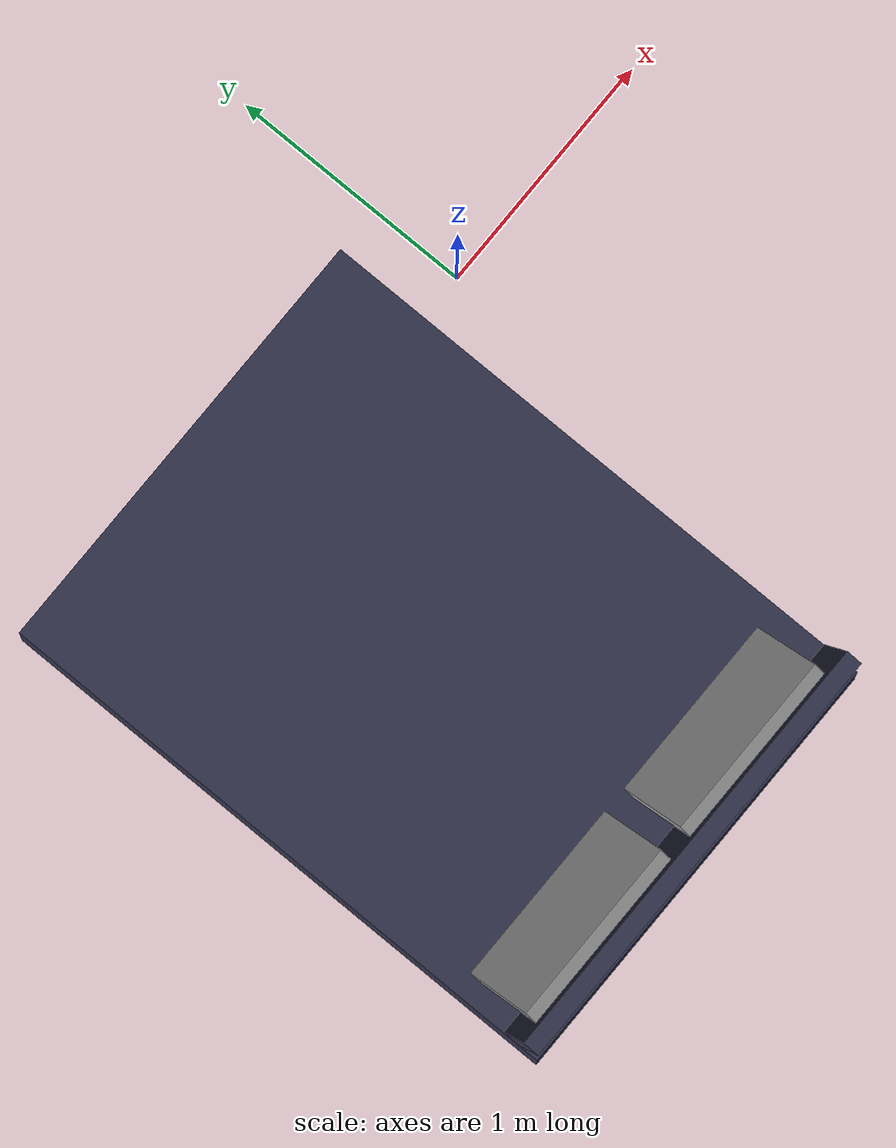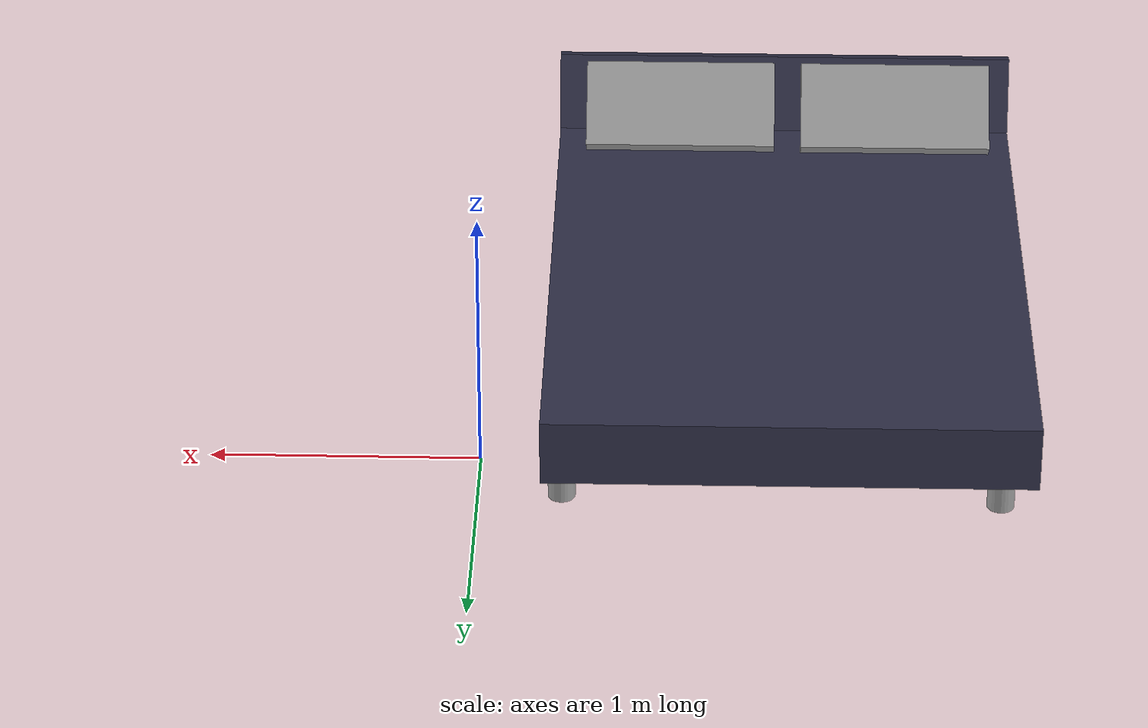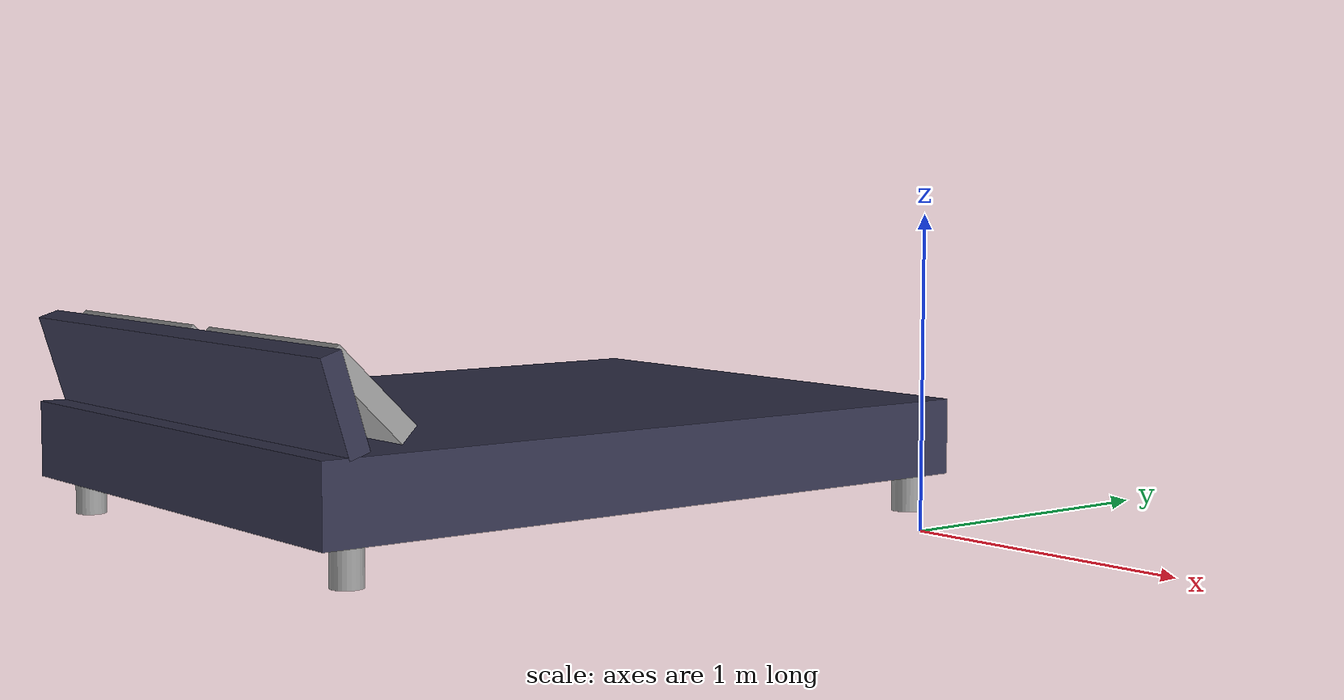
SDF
<?xml version='1.0'?>
<sdf version='1.7'>
  <model name='my_bed'>
    <link name='link'>
      <inertial>
        <mass>1</mass>
        <inertia>
          <ixx>0.166667</ixx>
          <ixy>0</ixy>
          <ixz>0</ixz>
          <iyy>0.166667</iyy>
          <iyz>0</iyz>
          <izz>0.166667</izz>
        </inertia>
        <pose>0 0 0 0 -0 0</pose>
      </inertial>
      <self_collide>0</self_collide>
      <enable_wind>0</enable_wind>
      <kinematic>0</kinematic>
      <pose>-1.13234 -0.845126 0 0 -0 0</pose>
      <gravity>1</gravity>
      <visual name='visual'>
        <geometry>
          <box>
            <size>1.8 2.4 0.25</size>
          </box>
        </geometry>
        <material>
          <script>
            <name>Gazebo/Grey</name>
            <uri>file://media/materials/scripts/gazebo.material</uri>
          </script>
          <shader type='pixel'>
            <normal_map>__default__</normal_map>
          </shader>
          <ambient>0.2 0.2 0.3 1</ambient>
          <diffuse>0.2 0.2 0.3 1</diffuse>
          <specular>0.01 0.01 0.01 1</specular>
          <emissive>0.1 0.1 0.1 1</emissive>
          <lighting>1</lighting>
        </material>
        <pose>0 0 0.25 0 -0 0</pose>
        <transparency>0</transparency>
        <cast_shadows>1</cast_shadows>
      </visual>
      <collision name='collision'>
        <laser_retro>0</laser_retro>
        <max_contacts>10</max_contacts>
        <pose>0 0 0.25 0 -0 0</pose>
        <geometry>
          <box>
            <size>1.8 2.4 0.25</size>
          </box>
        </geometry>
        <surface>
          <friction>
            <ode>
              <mu>1</mu>
              <mu2>1</mu2>
              <fdir1>0 0 0</fdir1>
              <slip1>0</slip1>
              <slip2>0</slip2>
            </ode>
            <torsional>
              <coefficient>1</coefficient>
              <patch_radius>0</patch_radius>
              <surface_radius>0</surface_radius>
              <use_patch_radius>1</use_patch_radius>
              <ode>
                <slip>0</slip>
              </ode>
            </torsional>
          </friction>
          <bounce>
            <restitution_coefficient>0</restitution_coefficient>
            <threshold>1e+06</threshold>
          </bounce>
          <contact>
            <collide_without_contact>0</collide_without_contact>
            <collide_without_contact_bitmask>1</collide_without_contact_bitmask>
            <collide_bitmask>1</collide_bitmask>
            <ode>
              <soft_cfm>0</soft_cfm>
              <soft_erp>0.2</soft_erp>
              <kp>1e+13</kp>
              <kd>1</kd>
              <max_vel>0.01</max_vel>
              <min_depth>0</min_depth>
            </ode>
            <bullet>
              <split_impulse>1</split_impulse>
              <split_impulse_penetration_threshold>-0.01</split_impulse_penetration_threshold>
              <soft_cfm>0</soft_cfm>
              <soft_erp>0.2</soft_erp>
              <kp>1e+13</kp>
              <kd>1</kd>
            </bullet>
          </contact>
        </surface>
      </collision>
    </link>
    <link name='link_0'>
      <inertial>
        <mass>1</mass>
        <inertia>
          <ixx>0.145833</ixx>
          <ixy>0</ixy>
          <ixz>0</ixz>
          <iyy>0.145833</iyy>
          <iyz>0</iyz>
          <izz>0.125</izz>
        </inertia>
        <pose>0 0 0 0 -0 0</pose>
      </inertial>
      <pose>-0.307109 0.243589 0.068801 0 -0 0</pose>
      <gravity>0</gravity>
      <self_collide>0</self_collide>
      <kinematic>0</kinematic>
      <enable_wind>0</enable_wind>
      <visual name='visual'>
        <pose>0 0 0 0 -0 0</pose>
        <geometry>
          <cylinder>
            <radius>0.05</radius>
            <length>0.13</length>
          </cylinder>
        </geometry>
        <material>
          <lighting>1</lighting>
          <script>
            <uri>file://media/materials/scripts/gazebo.material</uri>
            <name>Gazebo/Grey</name>
          </script>
          <shader type='pixel'>
            <normal_map>__default__</normal_map>
          </shader>
          <ambient>0.3 0.3 0.3 1</ambient>
          <diffuse>0.7 0.7 0.7 1</diffuse>
          <specular>0.01 0.01 0.01 1</specular>
          <emissive>0 0 0 1</emissive>
        </material>
        <transparency>0</transparency>
        <cast_shadows>1</cast_shadows>
      </visual>
      <collision name='collision'>
        <laser_retro>0</laser_retro>
        <max_contacts>10</max_contacts>
        <pose>0 0 0 0 -0 0</pose>
        <geometry>
          <cylinder>
            <radius>0.05</radius>
            <length>0.13</length>
          </cylinder>
        </geometry>
        <surface>
          <friction>
            <ode>
              <mu>1</mu>
              <mu2>1</mu2>
              <fdir1>0 0 0</fdir1>
              <slip1>0</slip1>
              <slip2>0</slip2>
            </ode>
            <torsional>
              <coefficient>1</coefficient>
              <patch_radius>0</patch_radius>
              <surface_radius>0</surface_radius>
              <use_patch_radius>1</use_patch_radius>
              <ode>
                <slip>0</slip>
              </ode>
            </torsional>
          </friction>
          <bounce>
            <restitution_coefficient>0</restitution_coefficient>
            <threshold>1e+06</threshold>
          </bounce>
          <contact>
            <collide_without_contact>0</collide_without_contact>
            <collide_without_contact_bitmask>1</collide_without_contact_bitmask>
            <collide_bitmask>1</collide_bitmask>
            <ode>
              <soft_cfm>0</soft_cfm>
              <soft_erp>0.2</soft_erp>
              <kp>1e+13</kp>
              <kd>1</kd>
              <max_vel>0.01</max_vel>
              <min_depth>0</min_depth>
            </ode>
            <bullet>
              <split_impulse>1</split_impulse>
              <split_impulse_penetration_threshold>-0.01</split_impulse_penetration_threshold>
              <soft_cfm>0</soft_cfm>
              <soft_erp>0.2</soft_erp>
              <kp>1e+13</kp>
              <kd>1</kd>
            </bullet>
          </contact>
        </surface>
      </collision>
    </link>
    <link name='link_0_0_clone'>
      <inertial>
        <mass>1</mass>
        <inertia>
          <ixx>0.166667</ixx>
          <ixy>0</ixy>
          <ixz>0</ixz>
          <iyy>0.166667</iyy>
          <iyz>0</iyz>
          <izz>0.166667</izz>
        </inertia>
        <pose>0 0 0 0 -0 0</pose>
      </inertial>
      <pose>-1.57153 -1.81704 0.527562 0 -0 0</pose>
      <gravity>0</gravity>
      <self_collide>0</self_collide>
      <kinematic>0</kinematic>
      <enable_wind>0</enable_wind>
      <visual name='visual_0'>
        <pose>0 0 0 0.8 -0 0</pose>
        <geometry>
          <box>
            <size>0.75 0.07 0.35</size>
          </box>
        </geometry>
        <material>
          <lighting>1</lighting>
          <script>
            <uri>file://media/materials/scripts/gazebo.material</uri>
            <name>Gazebo/Grey</name>
          </script>
          <shader type='pixel'>
            <normal_map>__default__</normal_map>
          </shader>
          <ambient>1 1 1 0</ambient>
          <diffuse>1 1 1 1</diffuse>
          <specular>0.01 0.01 0.01 1</specular>
          <emissive>0 0 0 1</emissive>
        </material>
        <transparency>0</transparency>
        <cast_shadows>1</cast_shadows>
      </visual>
      <collision name='collision'>
        <laser_retro>0</laser_retro>
        <max_contacts>10</max_contacts>
        <pose>0 0 0 0.8 -0 0</pose>
        <geometry>
          <box>
            <size>0.75 0.07 0.35</size>
          </box>
        </geometry>
        <surface>
          <friction>
            <ode>
              <mu>1</mu>
              <mu2>1</mu2>
              <fdir1>0 0 0</fdir1>
              <slip1>0</slip1>
              <slip2>0</slip2>
            </ode>
            <torsional>
              <coefficient>1</coefficient>
              <patch_radius>0</patch_radius>
              <surface_radius>0</surface_radius>
              <use_patch_radius>1</use_patch_radius>
              <ode>
                <slip>0</slip>
              </ode>
            </torsional>
          </friction>
          <bounce>
            <restitution_coefficient>0</restitution_coefficient>
            <threshold>1e+06</threshold>
          </bounce>
          <contact>
            <collide_without_contact>0</collide_without_contact>
            <collide_without_contact_bitmask>1</collide_without_contact_bitmask>
            <collide_bitmask>1</collide_bitmask>
            <ode>
              <soft_cfm>0</soft_cfm>
              <soft_erp>0.2</soft_erp>
              <kp>1e+13</kp>
              <kd>1</kd>
              <max_vel>0.01</max_vel>
              <min_depth>0</min_depth>
            </ode>
            <bullet>
              <split_impulse>1</split_impulse>
              <split_impulse_penetration_threshold>-0.01</split_impulse_penetration_threshold>
              <soft_cfm>0</soft_cfm>
              <soft_erp>0.2</soft_erp>
              <kp>1e+13</kp>
              <kd>1</kd>
            </bullet>
          </contact>
        </surface>
      </collision>
    </link>
    <link name='link_0_0_clone_clone'>
      <inertial>
        <mass>1</mass>
        <inertia>
          <ixx>0.166667</ixx>
          <ixy>0</ixy>
          <ixz>0</ixz>
          <iyy>0.166667</iyy>
          <iyz>0</iyz>
          <izz>0.166667</izz>
        </inertia>
        <pose>0 0 0 0 -0 0</pose>
      </inertial>
      <pose>-0.71588 -1.81886 0.527562 0 -0 0</pose>
      <gravity>0</gravity>
      <self_collide>0</self_collide>
      <kinematic>0</kinematic>
      <enable_wind>0</enable_wind>
      <visual name='visual_0'>
        <pose>0 0 0 0.8 -0 0</pose>
        <geometry>
          <box>
            <size>0.75 0.07 0.35</size>
          </box>
        </geometry>
        <material>
          <lighting>1</lighting>
          <script>
            <uri>file://media/materials/scripts/gazebo.material</uri>
            <name>Gazebo/Grey</name>
          </script>
          <shader type='pixel'>
            <normal_map>__default__</normal_map>
          </shader>
          <ambient>1 1 1 0</ambient>
          <diffuse>1 1 1 1</diffuse>
          <specular>0.01 0.01 0.01 1</specular>
          <emissive>0 0 0 1</emissive>
        </material>
        <transparency>0</transparency>
        <cast_shadows>1</cast_shadows>
      </visual>
      <collision name='collision'>
        <laser_retro>0</laser_retro>
        <max_contacts>10</max_contacts>
        <pose>0 0 0 0.8 -0 0</pose>
        <geometry>
          <box>
            <size>0.75 0.07 0.35</size>
          </box>
        </geometry>
        <surface>
          <friction>
            <ode>
              <mu>1</mu>
              <mu2>1</mu2>
              <fdir1>0 0 0</fdir1>
              <slip1>0</slip1>
              <slip2>0</slip2>
            </ode>
            <torsional>
              <coefficient>1</coefficient>
              <patch_radius>0</patch_radius>
              <surface_radius>0</surface_radius>
              <use_patch_radius>1</use_patch_radius>
              <ode>
                <slip>0</slip>
              </ode>
            </torsional>
          </friction>
          <bounce>
            <restitution_coefficient>0</restitution_coefficient>
            <threshold>1e+06</threshold>
          </bounce>
          <contact>
            <collide_without_contact>0</collide_without_contact>
            <collide_without_contact_bitmask>1</collide_without_contact_bitmask>
            <collide_bitmask>1</collide_bitmask>
            <ode>
              <soft_cfm>0</soft_cfm>
              <soft_erp>0.2</soft_erp>
              <kp>1e+13</kp>
              <kd>1</kd>
              <max_vel>0.01</max_vel>
              <min_depth>0</min_depth>
            </ode>
            <bullet>
              <split_impulse>1</split_impulse>
              <split_impulse_penetration_threshold>-0.01</split_impulse_penetration_threshold>
              <soft_cfm>0</soft_cfm>
              <soft_erp>0.2</soft_erp>
              <kp>1e+13</kp>
              <kd>1</kd>
            </bullet>
          </contact>
        </surface>
      </collision>
    </link>
    <link name='link_0_clone'>
      <inertial>
        <mass>1</mass>
        <inertia>
          <ixx>0.145833</ixx>
          <ixy>0</ixy>
          <ixz>0</ixz>
          <iyy>0.145833</iyy>
          <iyz>0</iyz>
          <izz>0.125</izz>
        </inertia>
        <pose>0 0 0 0 -0 0</pose>
      </inertial>
      <pose>-1.9007 0.274345 0.068801 0 -0 0</pose>
      <gravity>0</gravity>
      <self_collide>0</self_collide>
      <kinematic>0</kinematic>
      <enable_wind>0</enable_wind>
      <visual name='visual'>
        <pose>0 0 0 0 -0 0</pose>
        <geometry>
          <cylinder>
            <radius>0.05</radius>
            <length>0.13</length>
          </cylinder>
        </geometry>
        <material>
          <lighting>1</lighting>
          <script>
            <uri>file://media/materials/scripts/gazebo.material</uri>
            <name>Gazebo/Grey</name>
          </script>
          <shader type='pixel'>
            <normal_map>__default__</normal_map>
          </shader>
          <ambient>0.3 0.3 0.3 1</ambient>
          <diffuse>0.7 0.7 0.7 1</diffuse>
          <specular>0.01 0.01 0.01 1</specular>
          <emissive>0 0 0 1</emissive>
        </material>
        <transparency>0</transparency>
        <cast_shadows>1</cast_shadows>
      </visual>
      <collision name='collision'>
        <laser_retro>0</laser_retro>
        <max_contacts>10</max_contacts>
        <pose>0 0 0 0 -0 0</pose>
        <geometry>
          <cylinder>
            <radius>0.05</radius>
            <length>0.13</length>
          </cylinder>
        </geometry>
        <surface>
          <friction>
            <ode>
              <mu>1</mu>
              <mu2>1</mu2>
              <fdir1>0 0 0</fdir1>
              <slip1>0</slip1>
              <slip2>0</slip2>
            </ode>
            <torsional>
              <coefficient>1</coefficient>
              <patch_radius>0</patch_radius>
              <surface_radius>0</surface_radius>
              <use_patch_radius>1</use_patch_radius>
              <ode>
                <slip>0</slip>
              </ode>
            </torsional>
          </friction>
          <bounce>
            <restitution_coefficient>0</restitution_coefficient>
            <threshold>1e+06</threshold>
          </bounce>
          <contact>
            <collide_without_contact>0</collide_without_contact>
            <collide_without_contact_bitmask>1</collide_without_contact_bitmask>
            <collide_bitmask>1</collide_bitmask>
            <ode>
              <soft_cfm>0</soft_cfm>
              <soft_erp>0.2</soft_erp>
              <kp>1e+13</kp>
              <kd>1</kd>
              <max_vel>0.01</max_vel>
              <min_depth>0</min_depth>
            </ode>
            <bullet>
              <split_impulse>1</split_impulse>
              <split_impulse_penetration_threshold>-0.01</split_impulse_penetration_threshold>
              <soft_cfm>0</soft_cfm>
              <soft_erp>0.2</soft_erp>
              <kp>1e+13</kp>
              <kd>1</kd>
            </bullet>
          </contact>
        </surface>
      </collision>
    </link>
    <link name='link_0_clone_0'>
      <inertial>
        <mass>1</mass>
        <inertia>
          <ixx>0.145833</ixx>
          <ixy>0</ixy>
          <ixz>0</ixz>
          <iyy>0.145833</iyy>
          <iyz>0</iyz>
          <izz>0.125</izz>
        </inertia>
        <pose>0 0 0 0 -0 0</pose>
      </inertial>
      <pose>-0.307106 -1.92435 0.068801 0 -0 0</pose>
      <gravity>0</gravity>
      <self_collide>0</self_collide>
      <kinematic>0</kinematic>
      <enable_wind>0</enable_wind>
      <visual name='visual'>
        <pose>0 0 0 0 -0 0</pose>
        <geometry>
          <cylinder>
            <radius>0.05</radius>
            <length>0.13</length>
          </cylinder>
        </geometry>
        <material>
          <lighting>1</lighting>
          <script>
            <uri>file://media/materials/scripts/gazebo.material</uri>
            <name>Gazebo/Grey</name>
          </script>
          <shader type='pixel'>
            <normal_map>__default__</normal_map>
          </shader>
          <ambient>0.3 0.3 0.3 1</ambient>
          <diffuse>0.7 0.7 0.7 1</diffuse>
          <specular>0.01 0.01 0.01 1</specular>
          <emissive>0 0 0 1</emissive>
        </material>
        <transparency>0</transparency>
        <cast_shadows>1</cast_shadows>
      </visual>
      <collision name='collision'>
        <laser_retro>0</laser_retro>
        <max_contacts>10</max_contacts>
        <pose>0 0 0 0 -0 0</pose>
        <geometry>
          <cylinder>
            <radius>0.05</radius>
            <length>0.13</length>
          </cylinder>
        </geometry>
        <surface>
          <friction>
            <ode>
              <mu>1</mu>
              <mu2>1</mu2>
              <fdir1>0 0 0</fdir1>
              <slip1>0</slip1>
              <slip2>0</slip2>
            </ode>
            <torsional>
              <coefficient>1</coefficient>
              <patch_radius>0</patch_radius>
              <surface_radius>0</surface_radius>
              <use_patch_radius>1</use_patch_radius>
              <ode>
                <slip>0</slip>
              </ode>
            </torsional>
          </friction>
          <bounce>
            <restitution_coefficient>0</restitution_coefficient>
            <threshold>1e+06</threshold>
          </bounce>
          <contact>
            <collide_without_contact>0</collide_without_contact>
            <collide_without_contact_bitmask>1</collide_without_contact_bitmask>
            <collide_bitmask>1</collide_bitmask>
            <ode>
              <soft_cfm>0</soft_cfm>
              <soft_erp>0.2</soft_erp>
              <kp>1e+13</kp>
              <kd>1</kd>
              <max_vel>0.01</max_vel>
              <min_depth>0</min_depth>
            </ode>
            <bullet>
              <split_impulse>1</split_impulse>
              <split_impulse_penetration_threshold>-0.01</split_impulse_penetration_threshold>
              <soft_cfm>0</soft_cfm>
              <soft_erp>0.2</soft_erp>
              <kp>1e+13</kp>
              <kd>1</kd>
            </bullet>
          </contact>
        </surface>
      </collision>
    </link>
    <link name='link_0_clone_1'>
      <inertial>
        <mass>1</mass>
        <inertia>
          <ixx>0.145833</ixx>
          <ixy>0</ixy>
          <ixz>0</ixz>
          <iyy>0.145833</iyy>
          <iyz>0</iyz>
          <izz>0.125</izz>
        </inertia>
        <pose>0 0 0 0 -0 0</pose>
      </inertial>
      <pose>-1.92795 -1.92176 0.068801 0 -0 0</pose>
      <gravity>0</gravity>
      <self_collide>0</self_collide>
      <kinematic>0</kinematic>
      <enable_wind>0</enable_wind>
      <visual name='visual'>
        <pose>0 0 0 0 -0 0</pose>
        <geometry>
          <cylinder>
            <radius>0.05</radius>
            <length>0.13</length>
          </cylinder>
        </geometry>
        <material>
          <lighting>1</lighting>
          <script>
            <uri>file://media/materials/scripts/gazebo.material</uri>
            <name>Gazebo/Grey</name>
          </script>
          <shader type='pixel'>
            <normal_map>__default__</normal_map>
          </shader>
          <ambient>0.3 0.3 0.3 1</ambient>
          <diffuse>0.7 0.7 0.7 1</diffuse>
          <specular>0.01 0.01 0.01 1</specular>
          <emissive>0 0 0 1</emissive>
        </material>
        <transparency>0</transparency>
        <cast_shadows>1</cast_shadows>
      </visual>
      <collision name='collision'>
        <laser_retro>0</laser_retro>
        <max_contacts>10</max_contacts>
        <pose>0 0 0 0 -0 0</pose>
        <geometry>
          <cylinder>
            <radius>0.05</radius>
            <length>0.13</length>
          </cylinder>
        </geometry>
        <surface>
          <friction>
            <ode>
              <mu>1</mu>
              <mu2>1</mu2>
              <fdir1>0 0 0</fdir1>
              <slip1>0</slip1>
              <slip2>0</slip2>
            </ode>
            <torsional>
              <coefficient>1</coefficient>
              <patch_radius>0</patch_radius>
              <surface_radius>0</surface_radius>
              <use_patch_radius>1</use_patch_radius>
              <ode>
                <slip>0</slip>
              </ode>
            </torsional>
          </friction>
          <bounce>
            <restitution_coefficient>0</restitution_coefficient>
            <threshold>1e+06</threshold>
          </bounce>
          <contact>
            <collide_without_contact>0</collide_without_contact>
            <collide_without_contact_bitmask>1</collide_without_contact_bitmask>
            <collide_bitmask>1</collide_bitmask>
            <ode>
              <soft_cfm>0</soft_cfm>
              <soft_erp>0.2</soft_erp>
              <kp>1e+13</kp>
              <kd>1</kd>
              <max_vel>0.01</max_vel>
              <min_depth>0</min_depth>
            </ode>
            <bullet>
              <split_impulse>1</split_impulse>
              <split_impulse_penetration_threshold>-0.01</split_impulse_penetration_threshold>
              <soft_cfm>0</soft_cfm>
              <soft_erp>0.2</soft_erp>
              <kp>1e+13</kp>
              <kd>1</kd>
            </bullet>
          </contact>
        </surface>
      </collision>
    </link>
    <link name='link_1'>
      <inertial>
        <mass>1</mass>
        <inertia>
          <ixx>0.166667</ixx>
          <ixy>0</ixy>
          <ixz>0</ixz>
          <iyy>0.166667</iyy>
          <iyz>0</iyz>
          <izz>0.166667</izz>
        </inertia>
        <pose>0 0 0 0 -0 0</pose>
      </inertial>
      <pose>-1.13157 -1.96783 0.518762 0 -0 0</pose>
      <gravity>1</gravity>
      <self_collide>0</self_collide>
      <kinematic>0</kinematic>
      <enable_wind>0</enable_wind>
      <visual name='visual'>
        <pose>0 0 0 0.3 -0 0</pose>
        <geometry>
          <box>
            <size>1.8 0.07 0.3</size>
          </box>
        </geometry>
        <material>
          <lighting>1</lighting>
          <script>
            <uri>file://media/materials/scripts/gazebo.material</uri>
            <name>Gazebo/Grey</name>
          </script>
          <shader type='pixel'>
            <normal_map>__default__</normal_map>
          </shader>
          <ambient>0.2 0.2 0.3 1</ambient>
          <diffuse>0.2 0.2 0.3 1</diffuse>
          <specular>0.01 0.01 0.01 1</specular>
          <emissive>0.1 0.1 0.1 1</emissive>
        </material>
        <transparency>0</transparency>
        <cast_shadows>1</cast_shadows>
      </visual>
      <collision name='collision'>
        <laser_retro>0</laser_retro>
        <max_contacts>10</max_contacts>
        <pose>0 0 0 0.3 -0 0</pose>
        <geometry>
          <box>
            <size>1.8 0.07 0.3</size>
          </box>
        </geometry>
        <surface>
          <friction>
            <ode>
              <mu>1</mu>
              <mu2>1</mu2>
              <fdir1>0 0 0</fdir1>
              <slip1>0</slip1>
              <slip2>0</slip2>
            </ode>
            <torsional>
              <coefficient>1</coefficient>
              <patch_radius>0</patch_radius>
              <surface_radius>0</surface_radius>
              <use_patch_radius>1</use_patch_radius>
              <ode>
                <slip>0</slip>
              </ode>
            </torsional>
          </friction>
          <bounce>
            <restitution_coefficient>0</restitution_coefficient>
            <threshold>1e+06</threshold>
          </bounce>
          <contact>
            <collide_without_contact>0</collide_without_contact>
            <collide_without_contact_bitmask>1</collide_without_contact_bitmask>
            <collide_bitmask>1</collide_bitmask>
            <ode>
              <soft_cfm>0</soft_cfm>
              <soft_erp>0.2</soft_erp>
              <kp>1e+13</kp>
              <kd>1</kd>
              <max_vel>0.01</max_vel>
              <min_depth>0</min_depth>
            </ode>
            <bullet>
              <split_impulse>1</split_impulse>
              <split_impulse_penetration_threshold>-0.01</split_impulse_penetration_threshold>
              <soft_cfm>0</soft_cfm>
              <soft_erp>0.2</soft_erp>
              <kp>1e+13</kp>
              <kd>1</kd>
            </bullet>
          </contact>
        </surface>
      </collision>
    </link>
    <static>1</static>
    <allow_auto_disable>1</allow_auto_disable>
  </model>
</sdf>
